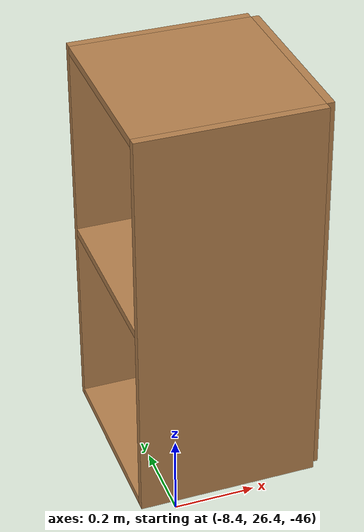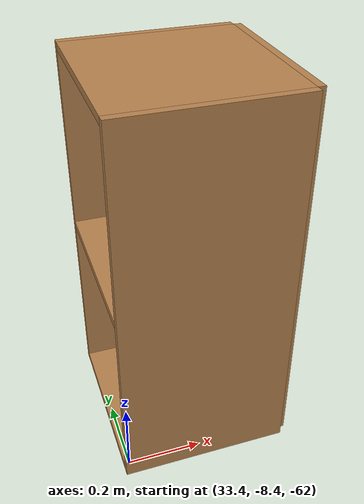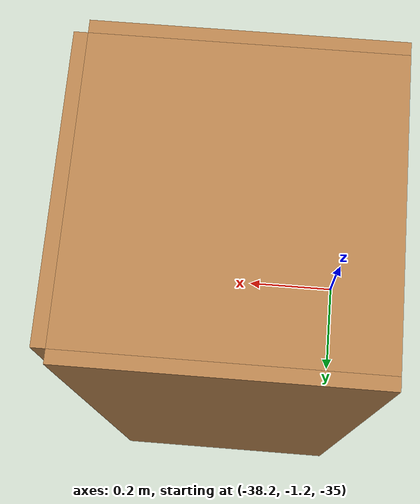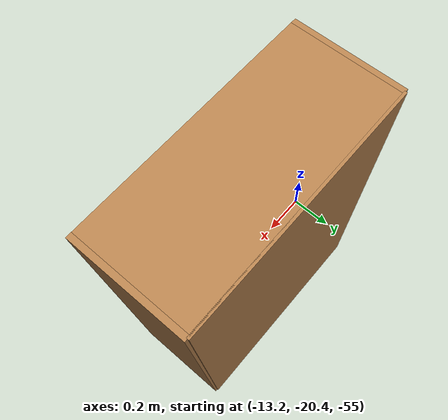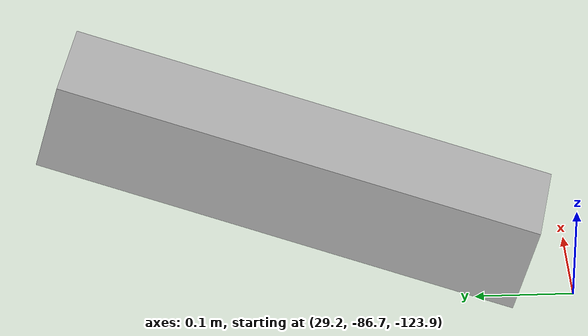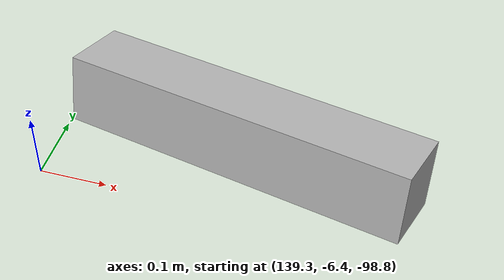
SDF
<sdf version="1.7">
 <world name="lake">
  <physics name="default_physics" default="1" type="ode">
   <max_step_size>0.01</max_step_size>
   <real_time_factor>1</real_time_factor>
   <real_time_update_rate>100</real_time_update_rate>
   <ode>
    <solver>
     <type>quick</type>
     <iters>50</iters>
     <sor>0.5</sor>
     <use_dynamic_moi_rescaling>0</use_dynamic_moi_rescaling>
    </solver>
    <constraints>
     <cfm>0</cfm>
     <erp>0.2</erp>
     <contact_max_correcting_vel>100</contact_max_correcting_vel>
     <contact_surface_layer>0.001</contact_surface_layer>
    </constraints>
   </ode>
  </physics>
  <scene>
   <ambient>0.01 0.01 0.01 1</ambient>
   <sky><clouds><speed>12</speed></clouds></sky>
   <shadows>1</shadows>
   <fog>
    <color>0.1 0.2 0.3 1</color>
    <type>linear</type>
    <density>0.1</density>
    <start>-50</start>
    <end>300</end>
   </fog>
   <background>0.7 0.7 0.7 1</background>
  </scene>
  <spherical_coordinates>
   <latitude_deg>47.6279</latitude_deg>
   <longitude_deg>9.33455</longitude_deg>
   <surface_model>EARTH_WGS84</surface_model>
   <elevation>0</elevation>
   <heading_deg>0</heading_deg>
  </spherical_coordinates>
  <light name="sun1" type="directional">
   <pose>50 0 150 0 -0 0</pose>
   <diffuse>1 1 1 1</diffuse>
   <specular>0.1 0.1 0.1 1</specular>
   <direction>0.3 0.3 -1</direction>
   <attenuation><range>10</range></attenuation>
   <spot><inner_angle>0</inner_angle><outer_angle>0</outer_angle><falloff>0</falloff></spot>
  </light>
  <light name="sun" type="directional">
   <pose>0 0 10 0 -0 0</pose>
   <diffuse>0.8 0.8 0.8 1</diffuse>
   <specular>0.2 0.2 0.2 1</specular>
   <attenuation>
    <range>1000</range>
    <constant>0.9</constant>
    <linear>0.01</linear>
    <quadratic>0.001</quadratic>
   </attenuation>
   <direction>-0.5 0.1 -0.9</direction>
   <spot><inner_angle>0</inner_angle><outer_angle>0</outer_angle><falloff>0</falloff></spot>
  </light>
  <model name="world_ned">
   <static>1</static>
   <link name="world_ned">
    <gravity>0</gravity>
    <pose>0 0 0 -3.14159 -0 1.5708</pose>
    <visual name="N_visual">
     <pose>0.25 0 0 1.5708 -0 1.5708</pose>
     <geometry><cylinder><radius>0.01</radius><length>0.5</length></cylinder></geometry>
     <material>
      <script><uri>file://media/materials/scripts/gazebo.material</uri><name>Gazebo/Red</name></script>
     </material>
    </visual>
    <visual name="E_visual">
     <pose>0 0.25 0 1.5708 -0 0</pose>
     <geometry><cylinder><radius>0.01</radius><length>0.5</length></cylinder></geometry>
     <material>
      <script><uri>file://media/materials/scripts/gazebo.material</uri><name>Gazebo/Green</name></script>
     </material>
    </visual>
    <visual name="D_visual">
     <pose>0 0 0.25 0 -0 0</pose>
     <geometry><cylinder><radius>0.01</radius><length>0.5</length></cylinder></geometry>
     <material>
      <script><uri>file://media/materials/scripts/gazebo.material</uri><name>Gazebo/Blue</name></script>
     </material>
    </visual>
   </link>
  </model>
  <plugin name="underwater_current_plugin" filename="libuuv_underwater_current_ros_plugin.so">
   <namespace>hydrodynamics</namespace>
   <constant_current>
    <topic>current_velocity</topic>
    <velocity><mean>0</mean><min>0</min><max>5</max><mu>0.0</mu><noiseAmp>0.0</noiseAmp></velocity>
    <horizontal_angle>
     <mean>0</mean>
     <min>-3.141592653589793238</min>
     <max>3.141592653589793238</max>
     <mu>0.0</mu>
     <noiseAmp>0.0</noiseAmp>
    </horizontal_angle>
    <vertical_angle>
     <mean>0</mean>
     <min>-3.141592653589793238</min>
     <max>3.141592653589793238</max>
     <mu>0.0</mu>
     <noiseAmp>0.0</noiseAmp>
    </vertical_angle>
   </constant_current>
  </plugin>
  <plugin name="sc_interface" filename="libuuv_sc_ros_interface_plugin.so"/>
  <gravity>0 0 -9.8</gravity>
  <magnetic_field>6e-06 2.3e-05 -4.2e-05</magnetic_field>
  <atmosphere type="adiabatic"/>
  <model name="bookshelf">
   <static>1</static>
   <link name="link">
    <inertial><mass>1</mass></inertial>
    <collision name="back">
     <pose>0 0.005 0.6 0 -0 0</pose>
     <geometry><box><size>0.9 0.01 1.2</size></box></geometry>
    </collision>
    <visual name="visual1">
     <pose>0 0.005 0.6 0 -0 0</pose>
     <geometry><box><size>0.9 0.01 1.2</size></box></geometry>
     <material>
      <script><uri>file://media/materials/scripts/gazebo.material</uri><name>Gazebo/Wood</name></script>
     </material>
    </visual>
    <collision name="left_side">
     <pose>0.45 -0.195 0.6 0 -0 0</pose>
     <geometry><box><size>0.02 0.4 1.2</size></box></geometry>
    </collision>
    <visual name="visual2">
     <pose>0.45 -0.195 0.6 0 -0 0</pose>
     <geometry><box><size>0.02 0.4 1.2</size></box></geometry>
     <material>
      <script><uri>file://media/materials/scripts/gazebo.material</uri><name>Gazebo/Wood</name></script>
     </material>
    </visual>
    <collision name="right_side">
     <pose>-0.45 -0.195 0.6 0 -0 0</pose>
     <geometry><box><size>0.02 0.4 1.2</size></box></geometry>
    </collision>
    <visual name="visual3">
     <pose>-0.45 -0.195 0.6 0 -0 0</pose>
     <geometry><box><size>0.02 0.4 1.2</size></box></geometry>
     <material>
      <script><uri>file://media/materials/scripts/gazebo.material</uri><name>Gazebo/Wood</name></script>
     </material>
    </visual>
    <collision name="bottom">
     <pose>0 -0.195 0.03 0 -0 0</pose>
     <geometry><box><size>0.88 0.4 0.06</size></box></geometry>
    </collision>
    <visual name="visual4">
     <pose>0 -0.195 0.03 0 -0 0</pose>
     <geometry><box><size>0.88 0.4 0.06</size></box></geometry>
     <material>
      <script><uri>file://media/materials/scripts/gazebo.material</uri><name>Gazebo/Wood</name></script>
     </material>
    </visual>
    <collision name="top">
     <pose>0 -0.195 1.19 0 -0 0</pose>
     <geometry><box><size>0.88 0.4 0.02</size></box></geometry>
    </collision>
    <visual name="visual5">
     <pose>0 -0.195 1.19 0 -0 0</pose>
     <geometry><box><size>0.88 0.4 0.02</size></box></geometry>
     <material>
      <script><uri>file://media/materials/scripts/gazebo.material</uri><name>Gazebo/Wood</name></script>
     </material>
    </visual>
    <collision name="low_shelf">
     <pose>0 -0.195 0.43 0 -0 0</pose>
     <geometry><box><size>0.88 0.4 0.02</size></box></geometry>
    </collision>
    <visual name="visual6">
     <pose>0 -0.195 0.43 0 -0 0</pose>
     <geometry><box><size>0.88 0.4 0.02</size></box></geometry>
     <material>
      <script><uri>file://media/materials/scripts/gazebo.material</uri><name>Gazebo/Wood</name></script>
     </material>
    </visual>
    <collision name="high_shelf">
     <pose>0 -0.195 0.8 0 -0 0</pose>
     <geometry><box><size>0.88 0.4 0.02</size></box></geometry>
    </collision>
    <visual name="visual7">
     <pose>0 -0.195 0.8 0 -0 0</pose>
     <geometry><box><size>0.88 0.4 0.02</size></box></geometry>
     <material>
      <script><uri>file://media/materials/scripts/gazebo.material</uri><name>Gazebo/Wood</name></script>
     </material>
    </visual>
   </link>
   <pose>-12.6828 -20.0954 -55 0 -0 0</pose>
  </model>
  <model name="cabinet">
   <static>1</static>
   <link name="cabinet_bottom_plate">
    <inertial>
     <pose>0 0 -1 0 -0 0</pose>
     <inertia><ixx>2.05</ixx><ixy>0</ixy><ixz>0</ixz><iyy>2.05</iyy><iyz>0</iyz><izz>2.05</izz></inertia>
     <mass>25</mass>
    </inertial>
    <collision name="cabinet_bottom_plate_geom">
     <pose>0 0 0.01 0 -0 0</pose>
     <geometry><box><size>0.45 0.45 0.02</size></box></geometry>
    </collision>
    <visual name="cabinet_bottom_plate_geom_visual">
     <pose>0 0 0.01 0 -0 0</pose>
     <geometry><box><size>0.45 0.45 0.02</size></box></geometry>
     <material>
      <script><uri>file://media/materials/scripts/gazebo.material</uri><name>Gazebo/Wood</name></script>
     </material>
    </visual>
    <collision name="cabinet_bottom_plate_geom_cabinet_back_plate">
     <pose>0.235 0 0.51 0 -0 0</pose>
     <geometry><box><size>0.02 0.45 1.02</size></box></geometry>
    </collision>
    <visual name="cabinet_bottom_plate_geom_cabinet_back_plate_visual">
     <pose>0.235 0 0.51 0 -0 0</pose>
     <geometry><box><size>0.02 0.45 1.02</size></box></geometry>
     <material>
      <script><uri>file://media/materials/scripts/gazebo.material</uri><name>Gazebo/Wood</name></script>
     </material>
    </visual>
    <collision name="cabinet_bottom_plate_geom_cabinet_left_plate">
     <pose>0 0.235 0.51 0 -0 0</pose>
     <geometry><box><size>0.45 0.02 1.02</size></box></geometry>
    </collision>
    <visual name="cabinet_bottom_plate_geom_cabinet_left_plate_visual">
     <pose>0 0.235 0.51 0 -0 0</pose>
     <geometry><box><size>0.45 0.02 1.02</size></box></geometry>
     <material>
      <script><uri>file://media/materials/scripts/gazebo.material</uri><name>Gazebo/Wood</name></script>
     </material>
    </visual>
    <collision name="cabinet_bottom_plate_geom_cabinet_middle_plate">
     <pose>0 0 0.51 0 -0 0</pose>
     <geometry><box><size>0.45 0.45 0.02</size></box></geometry>
    </collision>
    <visual name="cabinet_bottom_plate_geom_cabinet_middle_plate_visual">
     <pose>0 0 0.51 0 -0 0</pose>
     <geometry><box><size>0.45 0.45 0.02</size></box></geometry>
     <material>
      <script><uri>file://media/materials/scripts/gazebo.material</uri><name>Gazebo/Wood</name></script>
     </material>
    </visual>
    <collision name="cabinet_bottom_plate_geom_cabinet_right_plate">
     <pose>0 -0.235 0.51 0 -0 0</pose>
     <geometry><box><size>0.45 0.02 1.02</size></box></geometry>
    </collision>
    <visual name="cabinet_bottom_plate_geom_cabinet_right_plate_visual">
     <pose>0 -0.235 0.51 0 -0 0</pose>
     <geometry><box><size>0.45 0.02 1.02</size></box></geometry>
     <material>
      <script><uri>file://media/materials/scripts/gazebo.material</uri><name>Gazebo/Wood</name></script>
     </material>
    </visual>
    <collision name="cabinet_bottom_plate_geom_cabinet_top_plate">
     <pose>0 0 1.01 0 -0 0</pose>
     <geometry><box><size>0.45 0.45 0.02</size></box></geometry>
    </collision>
    <visual name="cabinet_bottom_plate_geom_cabinet_top_plate_visual">
     <pose>0 0 1.01 0 -0 0</pose>
     <geometry><box><size>0.45 0.45 0.02</size></box></geometry>
     <material>
      <script><uri>file://media/materials/scripts/gazebo.material</uri><name>Gazebo/Wood</name></script>
     </material>
    </visual>
   </link>
   <pose>33.6085 -8.19234 -62 0 -0 0</pose>
  </model>
  <model name="cabinet_0">
   <static>1</static>
   <link name="cabinet_bottom_plate">
    <inertial>
     <pose>0 0 -1 0 -0 0</pose>
     <inertia><ixx>2.05</ixx><ixy>0</ixy><ixz>0</ixz><iyy>2.05</iyy><iyz>0</iyz><izz>2.05</izz></inertia>
     <mass>25</mass>
    </inertial>
    <collision name="cabinet_bottom_plate_geom">
     <pose>0 0 0.01 0 -0 0</pose>
     <geometry><box><size>0.45 0.45 0.02</size></box></geometry>
    </collision>
    <visual name="cabinet_bottom_plate_geom_visual">
     <pose>0 0 0.01 0 -0 0</pose>
     <geometry><box><size>0.45 0.45 0.02</size></box></geometry>
     <material>
      <script><uri>file://media/materials/scripts/gazebo.material</uri><name>Gazebo/Wood</name></script>
     </material>
    </visual>
    <collision name="cabinet_bottom_plate_geom_cabinet_back_plate">
     <pose>0.235 0 0.51 0 -0 0</pose>
     <geometry><box><size>0.02 0.45 1.02</size></box></geometry>
    </collision>
    <visual name="cabinet_bottom_plate_geom_cabinet_back_plate_visual">
     <pose>0.235 0 0.51 0 -0 0</pose>
     <geometry><box><size>0.02 0.45 1.02</size></box></geometry>
     <material>
      <script><uri>file://media/materials/scripts/gazebo.material</uri><name>Gazebo/Wood</name></script>
     </material>
    </visual>
    <collision name="cabinet_bottom_plate_geom_cabinet_left_plate">
     <pose>0 0.235 0.51 0 -0 0</pose>
     <geometry><box><size>0.45 0.02 1.02</size></box></geometry>
    </collision>
    <visual name="cabinet_bottom_plate_geom_cabinet_left_plate_visual">
     <pose>0 0.235 0.51 0 -0 0</pose>
     <geometry><box><size>0.45 0.02 1.02</size></box></geometry>
     <material>
      <script><uri>file://media/materials/scripts/gazebo.material</uri><name>Gazebo/Wood</name></script>
     </material>
    </visual>
    <collision name="cabinet_bottom_plate_geom_cabinet_middle_plate">
     <pose>0 0 0.51 0 -0 0</pose>
     <geometry><box><size>0.45 0.45 0.02</size></box></geometry>
    </collision>
    <visual name="cabinet_bottom_plate_geom_cabinet_middle_plate_visual">
     <pose>0 0 0.51 0 -0 0</pose>
     <geometry><box><size>0.45 0.45 0.02</size></box></geometry>
     <material>
      <script><uri>file://media/materials/scripts/gazebo.material</uri><name>Gazebo/Wood</name></script>
     </material>
    </visual>
    <collision name="cabinet_bottom_plate_geom_cabinet_right_plate">
     <pose>0 -0.235 0.51 0 -0 0</pose>
     <geometry><box><size>0.45 0.02 1.02</size></box></geometry>
    </collision>
    <visual name="cabinet_bottom_plate_geom_cabinet_right_plate_visual">
     <pose>0 -0.235 0.51 0 -0 0</pose>
     <geometry><box><size>0.45 0.02 1.02</size></box></geometry>
     <material>
      <script><uri>file://media/materials/scripts/gazebo.material</uri><name>Gazebo/Wood</name></script>
     </material>
    </visual>
    <collision name="cabinet_bottom_plate_geom_cabinet_top_plate">
     <pose>0 0 1.01 0 -0 0</pose>
     <geometry><box><size>0.45 0.45 0.02</size></box></geometry>
    </collision>
    <visual name="cabinet_bottom_plate_geom_cabinet_top_plate_visual">
     <pose>0 0 1.01 0 -0 0</pose>
     <geometry><box><size>0.45 0.45 0.02</size></box></geometry>
     <material>
      <script><uri>file://media/materials/scripts/gazebo.material</uri><name>Gazebo/Wood</name></script>
     </material>
    </visual>
   </link>
   <pose>-8.2555 26.6658 -46 0 -0 0</pose>
  </model>
  <model name="cabinet_1">
   <static>1</static>
   <link name="cabinet_bottom_plate">
    <inertial>
     <pose>0 0 -1 0 -0 0</pose>
     <inertia><ixx>2.05</ixx><ixy>0</ixy><ixz>0</ixz><iyy>2.05</iyy><iyz>0</iyz><izz>2.05</izz></inertia>
     <mass>25</mass>
    </inertial>
    <collision name="cabinet_bottom_plate_geom">
     <pose>0 0 0.01 0 -0 0</pose>
     <geometry><box><size>0.45 0.45 0.02</size></box></geometry>
    </collision>
    <visual name="cabinet_bottom_plate_geom_visual">
     <pose>0 0 0.01 0 -0 0</pose>
     <geometry><box><size>0.45 0.45 0.02</size></box></geometry>
     <material>
      <script><uri>file://media/materials/scripts/gazebo.material</uri><name>Gazebo/Wood</name></script>
     </material>
    </visual>
    <collision name="cabinet_bottom_plate_geom_cabinet_back_plate">
     <pose>0.235 0 0.51 0 -0 0</pose>
     <geometry><box><size>0.02 0.45 1.02</size></box></geometry>
    </collision>
    <visual name="cabinet_bottom_plate_geom_cabinet_back_plate_visual">
     <pose>0.235 0 0.51 0 -0 0</pose>
     <geometry><box><size>0.02 0.45 1.02</size></box></geometry>
     <material>
      <script><uri>file://media/materials/scripts/gazebo.material</uri><name>Gazebo/Wood</name></script>
     </material>
    </visual>
    <collision name="cabinet_bottom_plate_geom_cabinet_left_plate">
     <pose>0 0.235 0.51 0 -0 0</pose>
     <geometry><box><size>0.45 0.02 1.02</size></box></geometry>
    </collision>
    <visual name="cabinet_bottom_plate_geom_cabinet_left_plate_visual">
     <pose>0 0.235 0.51 0 -0 0</pose>
     <geometry><box><size>0.45 0.02 1.02</size></box></geometry>
     <material>
      <script><uri>file://media/materials/scripts/gazebo.material</uri><name>Gazebo/Wood</name></script>
     </material>
    </visual>
    <collision name="cabinet_bottom_plate_geom_cabinet_middle_plate">
     <pose>0 0 0.51 0 -0 0</pose>
     <geometry><box><size>0.45 0.45 0.02</size></box></geometry>
    </collision>
    <visual name="cabinet_bottom_plate_geom_cabinet_middle_plate_visual">
     <pose>0 0 0.51 0 -0 0</pose>
     <geometry><box><size>0.45 0.45 0.02</size></box></geometry>
     <material>
      <script><uri>file://media/materials/scripts/gazebo.material</uri><name>Gazebo/Wood</name></script>
     </material>
    </visual>
    <collision name="cabinet_bottom_plate_geom_cabinet_right_plate">
     <pose>0 -0.235 0.51 0 -0 0</pose>
     <geometry><box><size>0.45 0.02 1.02</size></box></geometry>
    </collision>
    <visual name="cabinet_bottom_plate_geom_cabinet_right_plate_visual">
     <pose>0 -0.235 0.51 0 -0 0</pose>
     <geometry><box><size>0.45 0.02 1.02</size></box></geometry>
     <material>
      <script><uri>file://media/materials/scripts/gazebo.material</uri><name>Gazebo/Wood</name></script>
     </material>
    </visual>
    <collision name="cabinet_bottom_plate_geom_cabinet_top_plate">
     <pose>0 0 1.01 0 -0 0</pose>
     <geometry><box><size>0.45 0.45 0.02</size></box></geometry>
    </collision>
    <visual name="cabinet_bottom_plate_geom_cabinet_top_plate_visual">
     <pose>0 0 1.01 0 -0 0</pose>
     <geometry><box><size>0.45 0.45 0.02</size></box></geometry>
     <material>
      <script><uri>file://media/materials/scripts/gazebo.material</uri><name>Gazebo/Wood</name></script>
     </material>
    </visual>
   </link>
   <pose>-37.97 -1.0349 -35 0 -0 0</pose>
  </model>
  <model name="box_0">
   <pose>29.2687 -86.4216 -123.785 -1.83071 0.057397 2.93487</pose>
   <link name="link">
    <collision name="collision">
     <laser_retro>255</laser_retro>
     <geometry><box><size>0.1 0.1 0.5</size></box></geometry>
    </collision>
    <visual name="visual">
     <laser_retro>255</laser_retro>
     <geometry><box><size>0.1 0.1 0.5</size></box></geometry>
    </visual>
    <inertial>
     <inertia><ixx>1</ixx><ixy>0</ixy><ixz>0</ixz><iyy>1</iyy><iyz>0</iyz><izz>1</izz></inertia>
     <mass>1</mass>
    </inertial>
   </link>
  </model>
  <model name="box_1">
   <pose>166.356 -72.4099 -43.3927 -1.57778 0.099792 0.030137</pose>
   <link name="link">
    <collision name="collision">
     <laser_retro>255</laser_retro>
     <geometry><box><size>0.1 0.1 0.5</size></box></geometry>
    </collision>
    <visual name="visual">
     <laser_retro>255</laser_retro>
     <geometry><box><size>0.1 0.1 0.5</size></box></geometry>
    </visual>
    <inertial>
     <inertia><ixx>1</ixx><ixy>0</ixy><ixz>0</ixz><iyy>1</iyy><iyz>0</iyz><izz>1</izz></inertia>
     <mass>1</mass>
    </inertial>
   </link>
  </model>
  <model name="box_2">
   <pose>139.584 -6.32969 -98.7041 1.71403 1.3552 -1.6543</pose>
   <link name="link">
    <collision name="collision">
     <laser_retro>255</laser_retro>
     <geometry><box><size>0.1 0.1 0.5</size></box></geometry>
    </collision>
    <visual name="visual">
     <laser_retro>255</laser_retro>
     <geometry><box><size>0.1 0.1 0.5</size></box></geometry>
    </visual>
    <inertial>
     <inertia><ixx>1</ixx><ixy>0</ixy><ixz>0</ixz><iyy>1</iyy><iyz>0</iyz><izz>1</izz></inertia>
     <mass>1</mass>
    </inertial>
   </link>
  </model>
 </world>
</sdf>
